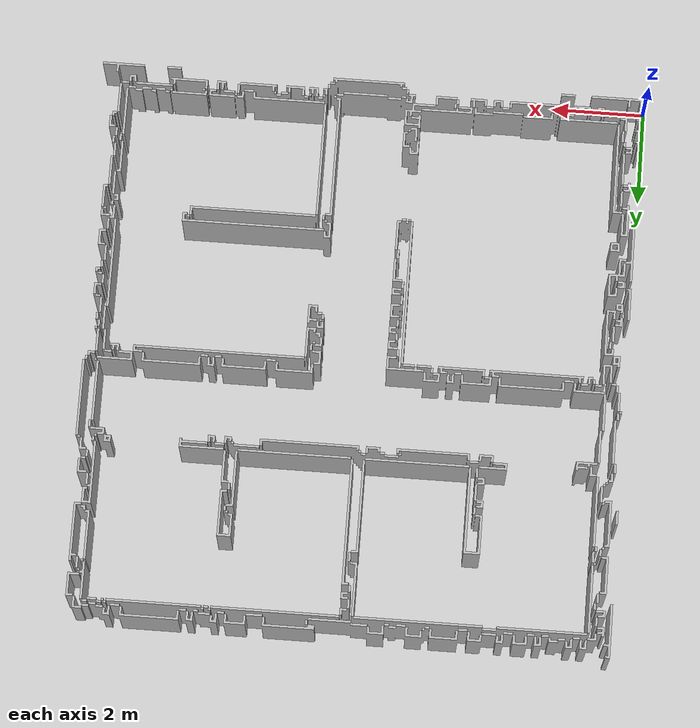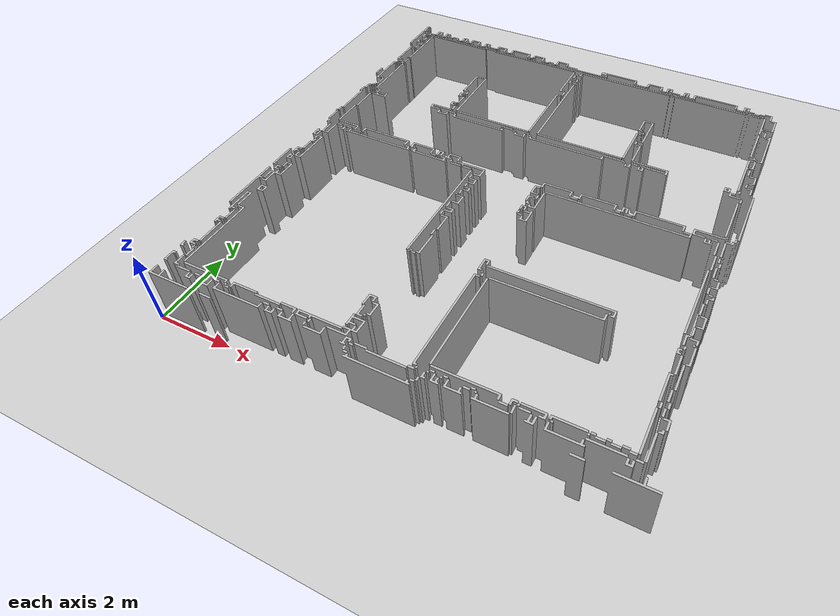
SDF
<sdf version='1.4'>
  <world name='default'>
    <!-- A global light source -->
    <include>
      <uri>model://sun</uri>
      <pose>5.975 6.225 20.0 0 0 0</pose>
    </include>

    <!-- A ground plane -->
    <include>
      <uri>model://ground_plane</uri>
    </include>

    <physics type="ode">
      <real_time_update_rate>1000.0</real_time_update_rate>
      <max_step_size>0.001</max_step_size>
      <real_time_factor>1</real_time_factor>
      <ode>
        <solver>
          <type>quick</type>
          <iters>150</iters>
          <precon_iters>0</precon_iters>
          <sor>1.400000</sor>
          <use_dynamic_moi_rescaling>1</use_dynamic_moi_rescaling>
        </solver>
        <constraints>
          <cfm>0.00001</cfm>
          <erp>0.2</erp>
          <contact_max_correcting_vel>2000.000000</contact_max_correcting_vel>
          <contact_surface_layer>0.01000</contact_surface_layer>
        </constraints>
      </ode>
    </physics>

    <!-- Load world -->
    <include>
      <uri>model://1r5</uri>
    </include>

    <scene>
      <ambient>0.4 0.4 0.4 1</ambient>
      <background>0.7 0.7 0.7 1</background>
      <shadows>true</shadows>
    </scene>

    <gui fullscreen='0'>
      <camera name='user_camera'>
        <pose>5.975 6.225 20.0 -1.570796 1.570796 0</pose>
        <view_controller>orbit</view_controller>
      </camera>
    </gui>
  </world>
</sdf>

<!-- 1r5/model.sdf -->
<sdf version="1.4">
  <model name="1r5">
    <link name="link">
      <inertial>
        <mass>15</mass>
        <inertia>
          <ixx>0.0</ixx>
          <ixy>0.0</ixy>
          <ixz>0.0</ixz>
          <iyy>0.0</iyy>
          <iyz>0.0</iyz>
          <izz>0.0</izz>
        </inertia>
      </inertial>
      <collision name="collision">
        <pose>0 0 0 0 0 0</pose>
        <geometry>
          <mesh>
            <uri>model://1r5/meshes/1r5.stl</uri>
          </mesh>
        </geometry>
      </collision>
      <visual name="visual">
        <pose>0 0 0 0 0 0</pose>
        <geometry>
          <mesh>
            <uri>model://1r5/meshes/1r5.stl</uri>
          </mesh>
        </geometry>
      </visual>
    </link>
    <static>1</static>
  </model>
</sdf>
